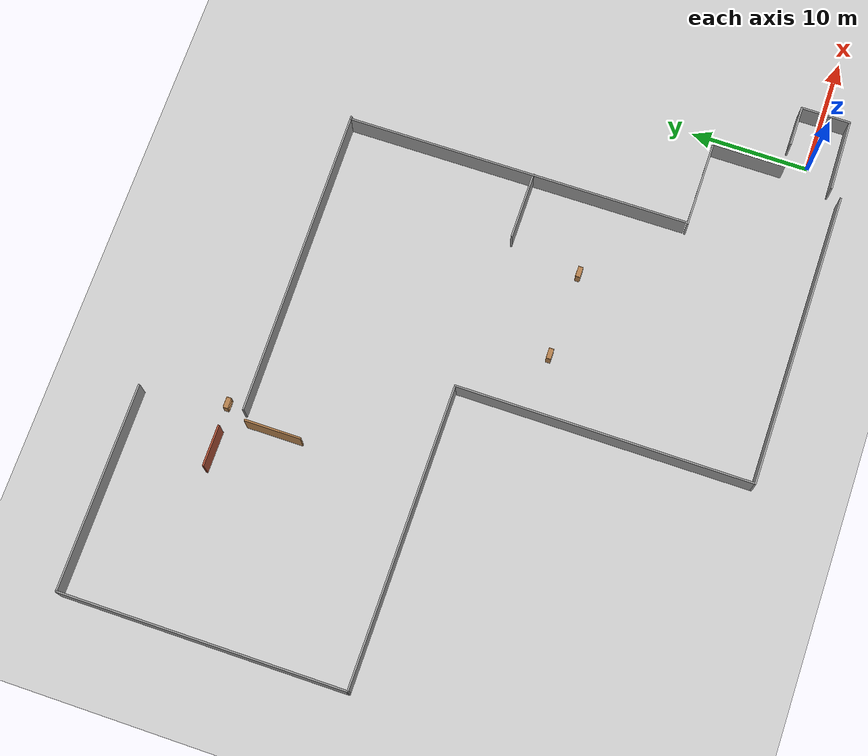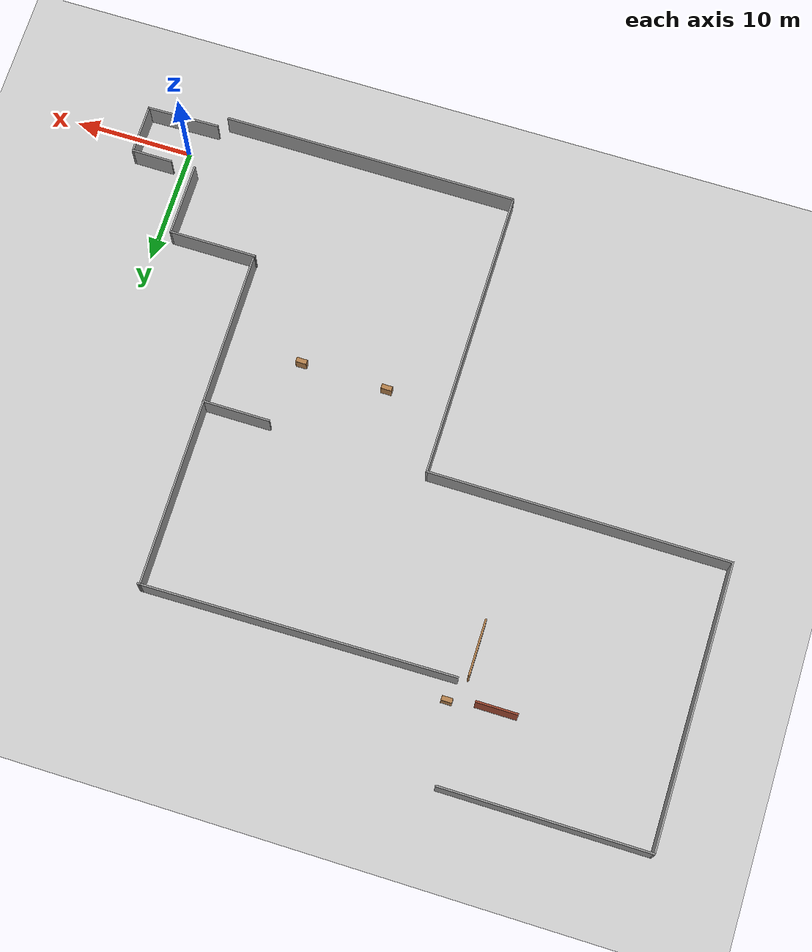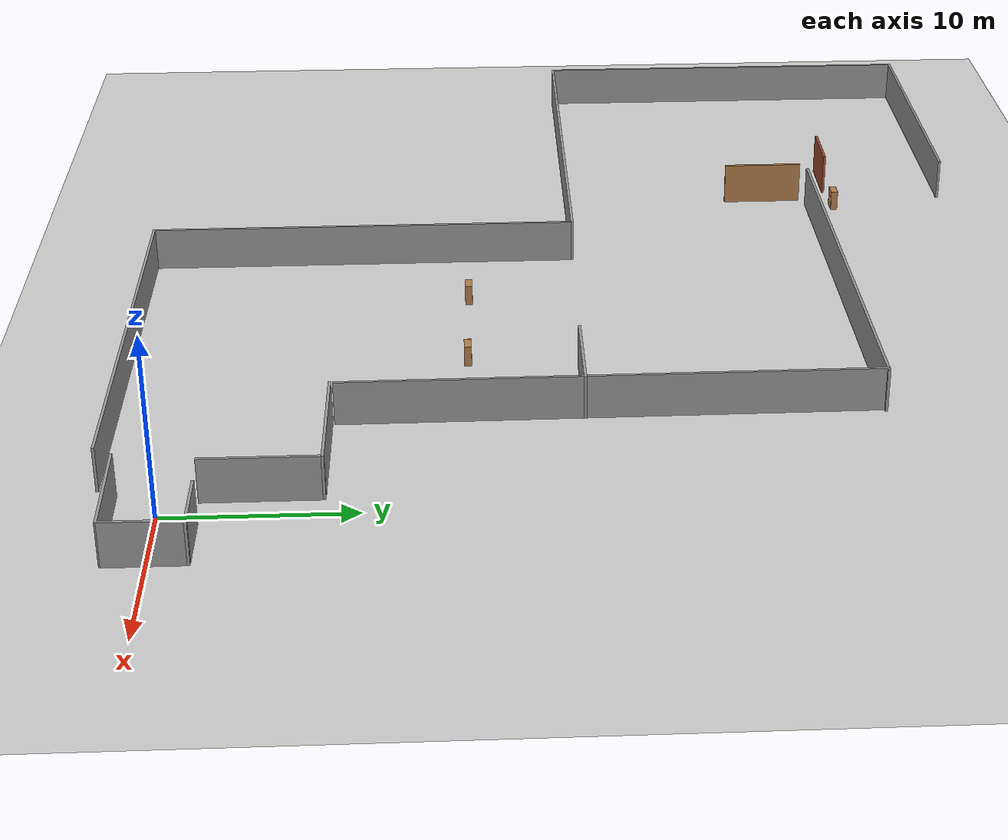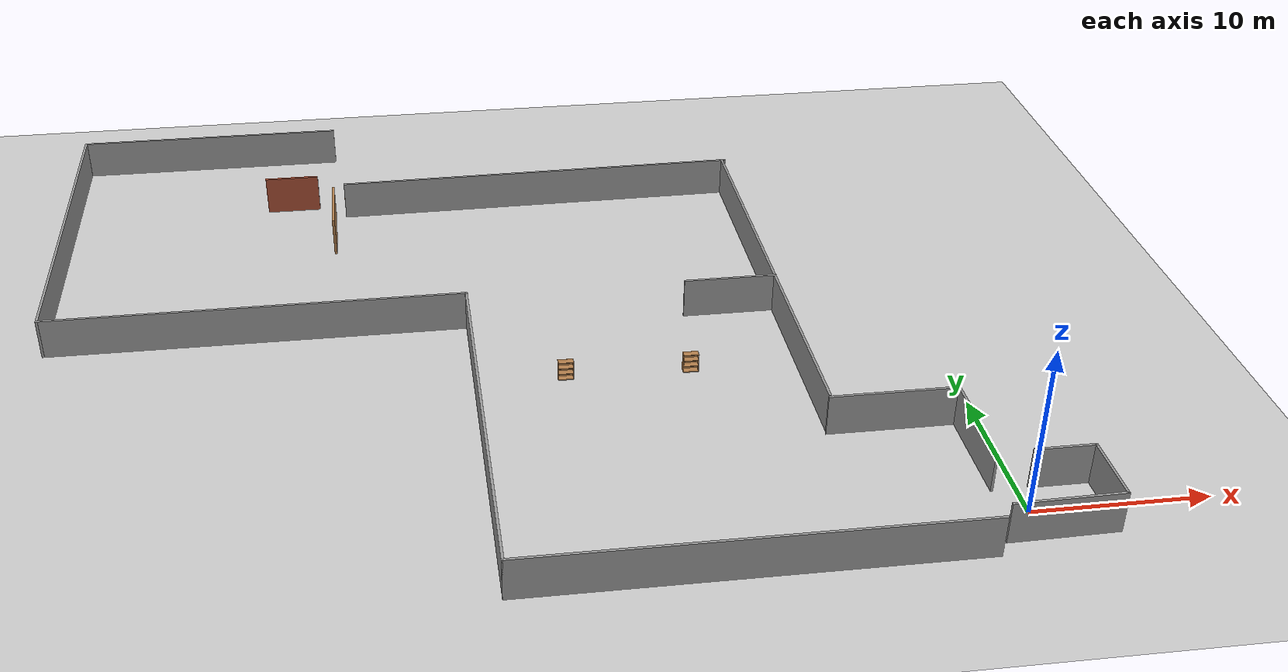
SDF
<sdf version="1.7">
 <world name="default">
  <light name="sun" type="directional">
   <pose>0 0 10 0 -0 0</pose>
   <diffuse>0.8 0.8 0.8 1</diffuse>
   <specular>0.2 0.2 0.2 1</specular>
   <attenuation>
    <range>1000</range>
    <constant>0.9</constant>
    <linear>0.01</linear>
    <quadratic>0.001</quadratic>
   </attenuation>
   <direction>-0.5 0.1 -0.9</direction>
   <spot><inner_angle>0</inner_angle><outer_angle>0</outer_angle><falloff>0</falloff></spot>
  </light>
  <model name="ground_plane">
   <static>1</static>
   <link name="link">
    <collision name="collision">
     <geometry><plane><normal>0 0 1</normal><size>100 100</size></plane></geometry>
     <surface>
      <contact><collide_bitmask>65535</collide_bitmask></contact>
      <friction><ode><mu>100</mu><mu2>50</mu2></ode></friction>
     </surface>
    </collision>
    <visual name="visual">
     <cast_shadows>0</cast_shadows>
     <geometry><plane><normal>0 0 1</normal><size>100 100</size></plane></geometry>
     <material>
      <script><uri>file://media/materials/scripts/gazebo.material</uri><name>Gazebo/Grey</name></script>
     </material>
    </visual>
   </link>
  </model>
  <plugin name="set_entity_state" filename="libgazebo_ros_set_entity_state.so"/>
  <plugin name="gazebo_link_attacher" filename="libgazebo_link_attacher.so"/>
  <plugin name="gazebo_ros_state" filename="libgazebo_ros_state.so"/>
  <gravity>0 0 -9.8</gravity>
  <magnetic_field>6e-06 2.3e-05 -4.2e-05</magnetic_field>
  <atmosphere type="adiabatic"/>
  <physics type="ode">
   <max_step_size>0.001</max_step_size>
   <real_time_factor>1</real_time_factor>
   <real_time_update_rate>1000</real_time_update_rate>
  </physics>
  <scene><ambient>0.4 0.4 0.4 1</ambient><background>0.7 0.7 0.7 1</background><shadows>1</shadows></scene>
  <audio><device>default</device></audio>
  <spherical_coordinates>
   <surface_model>EARTH_WGS84</surface_model>
   <latitude_deg>0</latitude_deg>
   <longitude_deg>0</longitude_deg>
   <elevation>0</elevation>
   <heading_deg>0</heading_deg>
  </spherical_coordinates>
  <model name="Untitled">
   <pose>1.06052 -0.09967 0 0 -0 0</pose>
   <link name="Wall_0">
    <collision name="Wall_0_Collision">
     <geometry><box><size>6.21027 0.15 2.5</size></box></geometry>
     <pose>0 0 1.25 0 -0 0</pose>
    </collision>
    <visual name="Wall_0_Visual">
     <pose>0 0 1.25 0 -0 0</pose>
     <geometry><box><size>6.21027 0.15 2.5</size></box></geometry>
     <material>
      <script><uri>file://media/materials/scripts/gazebo.material</uri><name>Gazebo/Grey</name></script>
      <ambient>1 1 1 1</ambient>
     </material>
     <meta><layer>0</layer></meta>
    </visual>
    <pose>-0 -2.058 0 0 -0 0.020204</pose>
   </link>
   <link name="Wall_1">
    <collision name="Wall_1_Collision">
     <geometry><box><size>4.25 0.15 2.5</size></box></geometry>
     <pose>0 0 1.25 0 -0 0</pose>
    </collision>
    <visual name="Wall_1_Visual">
     <pose>0 0 1.25 0 -0 0</pose>
     <geometry><box><size>4.25 0.15 2.5</size></box></geometry>
     <material>
      <script><uri>file://media/materials/scripts/gazebo.material</uri><name>Gazebo/Grey</name></script>
      <ambient>1 1 1 1</ambient>
     </material>
     <meta><layer>0</layer></meta>
    </visual>
    <pose>3.02951 0.07071 0 0 -0 1.5708</pose>
   </link>
   <link name="Wall_3">
    <collision name="Wall_3_Collision">
     <geometry><box><size>3.5 0.15 2.5</size></box></geometry>
     <pose>0 0 1.25 0 -0 0</pose>
    </collision>
    <visual name="Wall_3_Visual">
     <pose>0 0 1.25 0 -0 0</pose>
     <geometry><box><size>3.5 0.15 2.5</size></box></geometry>
     <material>
      <script><uri>file://media/materials/scripts/gazebo.material</uri><name>Gazebo/Grey</name></script>
      <ambient>1 1 1 1</ambient>
     </material>
     <meta><layer>0</layer></meta>
    </visual>
    <pose>1.35451 2.12071 0 0 -0 3.14159</pose>
   </link>
   <static>1</static>
  </model>
  <model name="Untitled_0">
   <pose>-26.595 21.1677 0 0 -0 0</pose>
   <link name="Wall_25">
    <collision name="Wall_25_Collision">
     <geometry><box><size>6.25 0.15 2.5</size></box></geometry>
     <pose>0 0 1.25 0 -0 0</pose>
    </collision>
    <visual name="Wall_25_Visual">
     <pose>0 0 1.25 0 -0 0</pose>
     <geometry><box><size>6.25 0.15 2.5</size></box></geometry>
     <material>
      <script><uri>file://media/materials/scripts/gazebo.material</uri><name>Gazebo/Grey</name></script>
      <ambient>1 1 1 1</ambient>
     </material>
     <meta><layer>0</layer></meta>
    </visual>
    <pose>25.2329 -16.1296 0 0 -0 1.5708</pose>
   </link>
   <link name="Wall_26">
    <collision name="Wall_26_Collision">
     <geometry><box><size>7.5 0.15 2.5</size></box></geometry>
     <pose>0 0 1.25 0 -0 0</pose>
    </collision>
    <visual name="Wall_26_Visual">
     <pose>0 0 1.25 0 -0 0</pose>
     <geometry><box><size>7.5 0.15 2.5</size></box></geometry>
     <material>
      <script><uri>file://media/materials/scripts/gazebo.material</uri><name>Gazebo/Grey</name></script>
      <ambient>1 1 1 1</ambient>
     </material>
     <meta><layer>0</layer></meta>
    </visual>
    <pose>21.5579 -13.0796 0 0 -0 3.14159</pose>
   </link>
   <link name="Wall_28">
    <collision name="Wall_28_Collision">
     <geometry><box><size>29.0986 0.15 2.5</size></box></geometry>
     <pose>0 0 1.25 0 -0 0</pose>
    </collision>
    <visual name="Wall_28_Visual">
     <pose>0 0 1.25 0 -0 0</pose>
     <geometry><box><size>29.0986 0.15 2.5</size></box></geometry>
     <material>
      <script><uri>file://media/materials/scripts/gazebo.material</uri><name>Gazebo/Grey</name></script>
      <ambient>1 1 1 1</ambient>
     </material>
     <meta><layer>0</layer></meta>
    </visual>
    <pose>17.8515 1.6241 0 0 -0 1.57622</pose>
   </link>
   <link name="Wall_29">
    <collision name="Wall_29_Collision">
     <geometry><box><size>26.4247 0.15 2.5</size></box></geometry>
     <pose>0 0 1.25 0 -0 0</pose>
    </collision>
    <visual name="Wall_29_Visual">
     <pose>0 0 1.25 0 -0 0</pose>
     <geometry><box><size>26.4247 0.15 2.5</size></box></geometry>
     <material>
      <script><uri>file://media/materials/scripts/gazebo.material</uri><name>Gazebo/Grey</name></script>
      <ambient>1 1 1 1</ambient>
     </material>
     <meta><layer>0</layer></meta>
    </visual>
    <pose>4.79359 15.9413 0 0 -0 -3.12965</pose>
   </link>
   <link name="Wall_31">
    <collision name="Wall_31_Collision">
     <geometry><box><size>25.25 0.15 2.5</size></box></geometry>
     <pose>0 0 1.25 0 -0 0</pose>
    </collision>
    <visual name="Wall_31_Visual">
     <pose>0 0 1.25 0 -0 0</pose>
     <geometry><box><size>25.25 0.15 2.5</size></box></geometry>
     <material>
      <script><uri>file://media/materials/scripts/gazebo.material</uri><name>Gazebo/Grey</name></script>
      <ambient>1 1 1 1</ambient>
     </material>
     <meta><layer>0</layer></meta>
    </visual>
    <pose>11.38 -24.35 0 0 -0 0</pose>
   </link>
   <link name="Wall_33">
    <collision name="Wall_33_Collision">
     <geometry><box><size>25 0.15 2.5</size></box></geometry>
     <pose>0 0 1.25 0 -0 0</pose>
    </collision>
    <visual name="Wall_33_Visual">
     <pose>0 0 1.25 0 -0 0</pose>
     <geometry><box><size>25 0.15 2.5</size></box></geometry>
     <material>
      <script><uri>file://media/materials/scripts/gazebo.material</uri><name>Gazebo/Grey</name></script>
      <ambient>1 1 1 1</ambient>
     </material>
     <meta><layer>0</layer></meta>
    </visual>
    <pose>-1.17 -11.925 0 0 -0 1.5708</pose>
   </link>
   <link name="Wall_34">
    <collision name="Wall_34_Collision">
     <geometry><box><size>25.5 0.15 2.5</size></box></geometry>
     <pose>0 0 1.25 0 -0 0</pose>
    </collision>
    <visual name="Wall_34_Visual">
     <pose>0 0 1.25 0 -0 0</pose>
     <geometry><box><size>25.5 0.15 2.5</size></box></geometry>
     <material>
      <script><uri>file://media/materials/scripts/gazebo.material</uri><name>Gazebo/Grey</name></script>
      <ambient>1 1 1 1</ambient>
     </material>
     <meta><layer>0</layer></meta>
    </visual>
    <pose>-13.845 0.499999 0 0 -0 3.14159</pose>
   </link>
   <link name="Wall_35">
    <collision name="Wall_35_Collision">
     <geometry><box><size>24 0.15 2.5</size></box></geometry>
     <pose>0 0 1.25 0 -0 0</pose>
    </collision>
    <visual name="Wall_35_Visual">
     <pose>0 0 1.25 0 -0 0</pose>
     <geometry><box><size>24 0.15 2.5</size></box></geometry>
     <material>
      <script><uri>file://media/materials/scripts/gazebo.material</uri><name>Gazebo/Grey</name></script>
      <ambient>1 1 1 1</ambient>
     </material>
     <meta><layer>0</layer></meta>
    </visual>
    <pose>-26.52 12.425 0 0 -0 1.5708</pose>
   </link>
   <link name="Wall_36">
    <collision name="Wall_36_Collision">
     <geometry><box><size>17.5 0.15 2.5</size></box></geometry>
     <pose>0 0 1.25 0 -0 0</pose>
    </collision>
    <visual name="Wall_36_Visual">
     <pose>0 0 1.25 0 -0 0</pose>
     <geometry><box><size>17.5 0.15 2.5</size></box></geometry>
     <material>
      <script><uri>file://media/materials/scripts/gazebo.material</uri><name>Gazebo/Grey</name></script>
      <ambient>1 1 1 1</ambient>
     </material>
     <meta><layer>0</layer></meta>
    </visual>
    <pose>-17.845 24.35 0 0 -0 0</pose>
   </link>
   <static>1</static>
  </model>
  <model name="bookshelf_0">
   <static>1</static>
   <link name="link">
    <inertial><mass>1</mass></inertial>
    <collision name="back">
     <pose>0 0.005 0.6 0 -0 0</pose>
     <geometry><box><size>0.9 0.01 1.2</size></box></geometry>
    </collision>
    <visual name="visual1">
     <pose>0 0.005 0.6 0 -0 0</pose>
     <geometry><box><size>0.9 0.01 1.2</size></box></geometry>
     <material>
      <script><uri>file://media/materials/scripts/gazebo.material</uri><name>Gazebo/Wood</name></script>
     </material>
    </visual>
    <collision name="left_side">
     <pose>0.45 -0.195 0.6 0 -0 0</pose>
     <geometry><box><size>0.02 0.4 1.2</size></box></geometry>
    </collision>
    <visual name="visual2">
     <pose>0.45 -0.195 0.6 0 -0 0</pose>
     <geometry><box><size>0.02 0.4 1.2</size></box></geometry>
     <material>
      <script><uri>file://media/materials/scripts/gazebo.material</uri><name>Gazebo/Wood</name></script>
     </material>
    </visual>
    <collision name="right_side">
     <pose>-0.45 -0.195 0.6 0 -0 0</pose>
     <geometry><box><size>0.02 0.4 1.2</size></box></geometry>
    </collision>
    <visual name="visual3">
     <pose>-0.45 -0.195 0.6 0 -0 0</pose>
     <geometry><box><size>0.02 0.4 1.2</size></box></geometry>
     <material>
      <script><uri>file://media/materials/scripts/gazebo.material</uri><name>Gazebo/Wood</name></script>
     </material>
    </visual>
    <collision name="bottom">
     <pose>0 -0.195 0.03 0 -0 0</pose>
     <geometry><box><size>0.88 0.4 0.06</size></box></geometry>
    </collision>
    <visual name="visual4">
     <pose>0 -0.195 0.03 0 -0 0</pose>
     <geometry><box><size>0.88 0.4 0.06</size></box></geometry>
     <material>
      <script><uri>file://media/materials/scripts/gazebo.material</uri><name>Gazebo/Wood</name></script>
     </material>
    </visual>
    <collision name="top">
     <pose>0 -0.195 1.19 0 -0 0</pose>
     <geometry><box><size>0.88 0.4 0.02</size></box></geometry>
    </collision>
    <visual name="visual5">
     <pose>0 -0.195 1.19 0 -0 0</pose>
     <geometry><box><size>0.88 0.4 0.02</size></box></geometry>
     <material>
      <script><uri>file://media/materials/scripts/gazebo.material</uri><name>Gazebo/Wood</name></script>
     </material>
    </visual>
    <collision name="low_shelf">
     <pose>0 -0.195 0.43 0 -0 0</pose>
     <geometry><box><size>0.88 0.4 0.02</size></box></geometry>
    </collision>
    <visual name="visual6">
     <pose>0 -0.195 0.43 0 -0 0</pose>
     <geometry><box><size>0.88 0.4 0.02</size></box></geometry>
     <material>
      <script><uri>file://media/materials/scripts/gazebo.material</uri><name>Gazebo/Wood</name></script>
     </material>
    </visual>
    <collision name="high_shelf">
     <pose>0 -0.195 0.8 0 -0 0</pose>
     <geometry><box><size>0.88 0.4 0.02</size></box></geometry>
    </collision>
    <visual name="visual7">
     <pose>0 -0.195 0.8 0 -0 0</pose>
     <geometry><box><size>0.88 0.4 0.02</size></box></geometry>
     <material>
      <script><uri>file://media/materials/scripts/gazebo.material</uri><name>Gazebo/Wood</name></script>
     </material>
    </visual>
   </link>
   <pose>-22.4627 15.594 0 0 -0 0</pose>
  </model>
  <model name="bookshelf_1">
   <static>1</static>
   <link name="link">
    <inertial><mass>1</mass></inertial>
    <collision name="back">
     <pose>0 0.005 0.6 0 -0 0</pose>
     <geometry><box><size>0.9 0.01 1.2</size></box></geometry>
    </collision>
    <visual name="visual1">
     <pose>0 0.005 0.6 0 -0 0</pose>
     <geometry><box><size>0.9 0.01 1.2</size></box></geometry>
     <material>
      <script><uri>file://media/materials/scripts/gazebo.material</uri><name>Gazebo/Wood</name></script>
     </material>
    </visual>
    <collision name="left_side">
     <pose>0.45 -0.195 0.6 0 -0 0</pose>
     <geometry><box><size>0.02 0.4 1.2</size></box></geometry>
    </collision>
    <visual name="visual2">
     <pose>0.45 -0.195 0.6 0 -0 0</pose>
     <geometry><box><size>0.02 0.4 1.2</size></box></geometry>
     <material>
      <script><uri>file://media/materials/scripts/gazebo.material</uri><name>Gazebo/Wood</name></script>
     </material>
    </visual>
    <collision name="right_side">
     <pose>-0.45 -0.195 0.6 0 -0 0</pose>
     <geometry><box><size>0.02 0.4 1.2</size></box></geometry>
    </collision>
    <visual name="visual3">
     <pose>-0.45 -0.195 0.6 0 -0 0</pose>
     <geometry><box><size>0.02 0.4 1.2</size></box></geometry>
     <material>
      <script><uri>file://media/materials/scripts/gazebo.material</uri><name>Gazebo/Wood</name></script>
     </material>
    </visual>
    <collision name="bottom">
     <pose>0 -0.195 0.03 0 -0 0</pose>
     <geometry><box><size>0.88 0.4 0.06</size></box></geometry>
    </collision>
    <visual name="visual4">
     <pose>0 -0.195 0.03 0 -0 0</pose>
     <geometry><box><size>0.88 0.4 0.06</size></box></geometry>
     <material>
      <script><uri>file://media/materials/scripts/gazebo.material</uri><name>Gazebo/Wood</name></script>
     </material>
    </visual>
    <collision name="top">
     <pose>0 -0.195 1.19 0 -0 0</pose>
     <geometry><box><size>0.88 0.4 0.02</size></box></geometry>
    </collision>
    <visual name="visual5">
     <pose>0 -0.195 1.19 0 -0 0</pose>
     <geometry><box><size>0.88 0.4 0.02</size></box></geometry>
     <material>
      <script><uri>file://media/materials/scripts/gazebo.material</uri><name>Gazebo/Wood</name></script>
     </material>
    </visual>
    <collision name="low_shelf">
     <pose>0 -0.195 0.43 0 -0 0</pose>
     <geometry><box><size>0.88 0.4 0.02</size></box></geometry>
    </collision>
    <visual name="visual6">
     <pose>0 -0.195 0.43 0 -0 0</pose>
     <geometry><box><size>0.88 0.4 0.02</size></box></geometry>
     <material>
      <script><uri>file://media/materials/scripts/gazebo.material</uri><name>Gazebo/Wood</name></script>
     </material>
    </visual>
    <collision name="high_shelf">
     <pose>0 -0.195 0.8 0 -0 0</pose>
     <geometry><box><size>0.88 0.4 0.02</size></box></geometry>
    </collision>
    <visual name="visual7">
     <pose>0 -0.195 0.8 0 -0 0</pose>
     <geometry><box><size>0.88 0.4 0.02</size></box></geometry>
     <material>
      <script><uri>file://media/materials/scripts/gazebo.material</uri><name>Gazebo/Wood</name></script>
     </material>
    </visual>
   </link>
   <pose>-34.6059 38.8169 0 0 -0 0</pose>
  </model>
  <model name="Untitled_1">
   <pose>-7.19386 10.7154 0 0 -0 0</pose>
   <link name="Wall_2">
    <collision name="Wall_2_Collision">
     <geometry><box><size>5.75 0.15 2.5</size></box></geometry>
     <pose>0 0 1.25 0 -0 0</pose>
    </collision>
    <visual name="Wall_2_Visual">
     <pose>0 0 1.25 0 -0 0</pose>
     <geometry><box><size>5.75 0.15 2.5</size></box></geometry>
     <material>
      <script><uri>file://media/materials/scripts/gazebo.material</uri><name>Gazebo/Grey</name></script>
      <ambient>1 1 1 1</ambient>
     </material>
     <meta><layer>0</layer></meta>
    </visual>
    <pose>-4.31884 10.6404 0 0 -0 0</pose>
   </link>
   <static>1</static>
  </model>
  <model name="bookshelf">
   <static>1</static>
   <link name="link">
    <inertial><mass>1</mass></inertial>
    <collision name="back">
     <pose>0 0.005 0.6 0 -0 0</pose>
     <geometry><box><size>0.9 0.01 1.2</size></box></geometry>
    </collision>
    <visual name="visual1">
     <pose>0 0.005 0.6 0 -0 0</pose>
     <geometry><box><size>0.9 0.01 1.2</size></box></geometry>
     <material>
      <script><uri>file://media/materials/scripts/gazebo.material</uri><name>Gazebo/Wood</name></script>
     </material>
    </visual>
    <collision name="left_side">
     <pose>0.45 -0.195 0.6 0 -0 0</pose>
     <geometry><box><size>0.02 0.4 1.2</size></box></geometry>
    </collision>
    <visual name="visual2">
     <pose>0.45 -0.195 0.6 0 -0 0</pose>
     <geometry><box><size>0.02 0.4 1.2</size></box></geometry>
     <material>
      <script><uri>file://media/materials/scripts/gazebo.material</uri><name>Gazebo/Wood</name></script>
     </material>
    </visual>
    <collision name="right_side">
     <pose>-0.45 -0.195 0.6 0 -0 0</pose>
     <geometry><box><size>0.02 0.4 1.2</size></box></geometry>
    </collision>
    <visual name="visual3">
     <pose>-0.45 -0.195 0.6 0 -0 0</pose>
     <geometry><box><size>0.02 0.4 1.2</size></box></geometry>
     <material>
      <script><uri>file://media/materials/scripts/gazebo.material</uri><name>Gazebo/Wood</name></script>
     </material>
    </visual>
    <collision name="bottom">
     <pose>0 -0.195 0.03 0 -0 0</pose>
     <geometry><box><size>0.88 0.4 0.06</size></box></geometry>
    </collision>
    <visual name="visual4">
     <pose>0 -0.195 0.03 0 -0 0</pose>
     <geometry><box><size>0.88 0.4 0.06</size></box></geometry>
     <material>
      <script><uri>file://media/materials/scripts/gazebo.material</uri><name>Gazebo/Wood</name></script>
     </material>
    </visual>
    <collision name="top">
     <pose>0 -0.195 1.19 0 -0 0</pose>
     <geometry><box><size>0.88 0.4 0.02</size></box></geometry>
    </collision>
    <visual name="visual5">
     <pose>0 -0.195 1.19 0 -0 0</pose>
     <geometry><box><size>0.88 0.4 0.02</size></box></geometry>
     <material>
      <script><uri>file://media/materials/scripts/gazebo.material</uri><name>Gazebo/Wood</name></script>
     </material>
    </visual>
    <collision name="low_shelf">
     <pose>0 -0.195 0.43 0 -0 0</pose>
     <geometry><box><size>0.88 0.4 0.02</size></box></geometry>
    </collision>
    <visual name="visual6">
     <pose>0 -0.195 0.43 0 -0 0</pose>
     <geometry><box><size>0.88 0.4 0.02</size></box></geometry>
     <material>
      <script><uri>file://media/materials/scripts/gazebo.material</uri><name>Gazebo/Wood</name></script>
     </material>
    </visual>
    <collision name="high_shelf">
     <pose>0 -0.195 0.8 0 -0 0</pose>
     <geometry><box><size>0.88 0.4 0.02</size></box></geometry>
    </collision>
    <visual name="visual7">
     <pose>0 -0.195 0.8 0 -0 0</pose>
     <geometry><box><size>0.88 0.4 0.02</size></box></geometry>
     <material>
      <script><uri>file://media/materials/scripts/gazebo.material</uri><name>Gazebo/Wood</name></script>
     </material>
    </visual>
   </link>
   <pose>-15.0828 15.4664 0 0 -0 0</pose>
  </model>
  <model name="Untitled_2">
   <pose>-20.1439 19.2045 0 0 -0 0</pose>
   <link name="Wall_19">
    <collision name="Wall_19_Collision">
     <geometry><box><size>3.5 0.15 2.5</size></box></geometry>
     <pose>0 0 1.25 0 -0 0</pose>
    </collision>
    <visual name="Wall_19_Visual">
     <pose>0 0 1.25 0 -0 0</pose>
     <geometry><box><size>3.5 0.15 2.5</size></box></geometry>
     <material>
      <script><uri>file://media/materials/scripts/gazebo.material</uri><name>Gazebo/Bricks</name></script>
      <ambient>1 1 1 1</ambient>
     </material>
     <meta><layer>0</layer></meta>
    </visual>
    <pose>-18.3939 19.1295 0 0 -0 3.14159</pose>
   </link>
   <link name="Wall_9">
    <collision name="Wall_9_Collision">
     <geometry><box><size>4.75 0.15 2.5</size></box></geometry>
     <pose>0 0 1.25 0 -0 0</pose>
    </collision>
    <visual name="Wall_9_Visual">
     <pose>0 0 1.25 0 -0 0</pose>
     <geometry><box><size>4.75 0.15 2.5</size></box></geometry>
     <material>
      <script><uri>file://media/materials/scripts/gazebo.material</uri><name>Gazebo/Wood</name></script>
      <ambient>1 1 1 1</ambient>
     </material>
     <meta><layer>0</layer></meta>
    </visual>
    <pose>-15.5901 15.0025 0 0 -0 -1.5708</pose>
   </link>
   <static>1</static>
  </model>
 </world>
</sdf>
